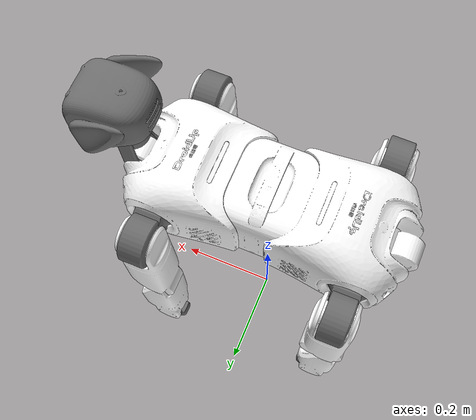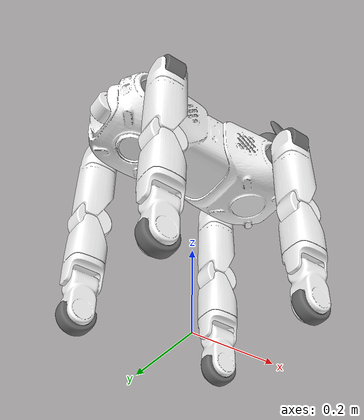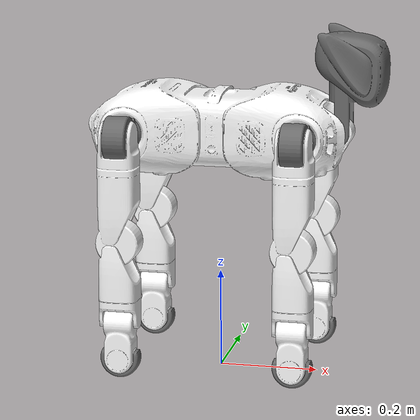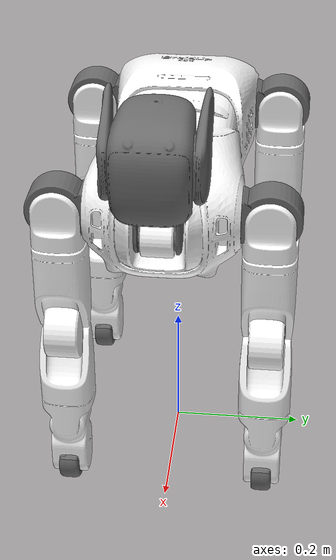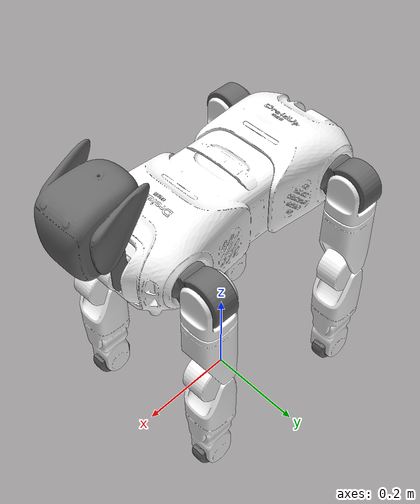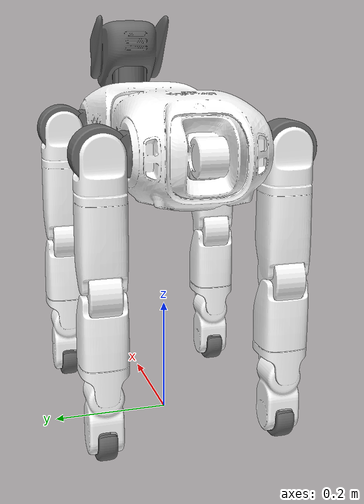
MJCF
<mujoco model="E1dog">
  <compiler angle="radian" meshdir="./meshes/"/>
  <statistic meansize="0.144785" extent="1.23314" center="0.025392 2.0634e-05 -0.245975"/>
  <default>
    <joint damping="0.1" armature="0.01" frictionloss="0.3"/>
  </default>
  <asset>
    <mesh name="base" file="base.STL"/>
    <mesh name="head_pitch_link" file="head_pitch_link.STL"/>
    <mesh name="head_yaw_link" file="head_yaw_link.STL"/>
    <mesh name="FL_thigh_link" file="FL_thigh_link.STL"/>
    <mesh name="FL_hip_link" file="FL_hip_link.STL"/>
    <mesh name="FL_calf_link" file="FL_calf_link.STL"/>
    <mesh name="FL_foot_link" file="FL_foot_link.STL"/>
    <mesh name="FR_thigh_link" file="FR_thigh_link.STL"/>
    <mesh name="FR_hip_link" file="FR_hip_link.STL"/>
    <mesh name="FR_calf_link" file="FR_calf_link.STL"/>
    <mesh name="FR_foot_link" file="FR_foot_link.STL"/>
    <mesh name="RL_thigh_link" file="RL_thigh_link.STL"/>
    <mesh name="RL_hip_link" file="RL_hip_link.STL"/>
    <mesh name="RL_calf_link" file="RL_calf_link.STL"/>
    <mesh name="RL_foot_link" file="RL_foot_link.STL"/>
    <mesh name="RR_thigh_link" file="RR_thigh_link.STL"/>
    <mesh name="RR_hip_link" file="RR_hip_link.STL"/>
    <mesh name="RR_calf_link" file="RR_calf_link.STL"/>
    <mesh name="RR_foot_link" file="RR_foot_link.STL"/>
    <mesh name="logo" file="logo.STL"/>
  </asset>

  <worldbody>
    <body name="base" pos="0 0 0.50">
      <inertial pos="0.0891669 -0.000129444 0.0258764" quat="0.0063885 0.583566 0.00373905 0.812032" mass="5.201" diaginertia="0.157138 0.135516 0.0747616"/>
      <joint name="floating_base_joint" type="free" limited="false" actuatorfrclimited="false"/>
      <geom type="mesh" contype="0" conaffinity="0" group="1" density="0" rgba="1 1 1 1" mesh="base"/>
      <geom type="mesh" rgba="1 1 1 1" mesh="base"/>
      <geom pos="0.24 0 0" type="mesh" contype="0" conaffinity="0" group="1" density="0" rgba="0.41961 0.41961 0.41961 1" mesh="head_pitch_link"/>
      <geom pos="0.25 0 0.12" quat="1 0 0 0" type="mesh" contype="0" conaffinity="0" group="1" density="0" rgba="0.41961 0.41961 0.41961 1" mesh="head_yaw_link"/>
      <geom type="mesh" contype="0" conaffinity="0" group="1" density="0" rgba="1 1 1 1" mesh="logo"/>
      <site name="imu" pos="-0.10 0  0.07"/>
      <body name="FL_thigh_link" pos="0.1755 0.094 0">
        <inertial pos="0 0.0468537 0" quat="0.707107 0.707107 0 0" mass="0.8" diaginertia="0.0009615 0.00072642 0.00052077"/>
        <joint name="FL_thigh_joint" pos="0 0 0" axis="0 1 0" range="-1.5708 3.4907" actuatorfrcrange="-23.7 23.7"/>
        <geom type="mesh" contype="0" conaffinity="0" group="1" density="0" rgba="0.41961 0.41961 0.41961 1" mesh="FL_thigh_link"/>
        <body name="FL_hip_link" pos="0 0.055 0">
          <inertial pos="-0.00166297 0 -0.0878622" quat="0.706782 -0.0214321 -0.0214321 0.706782" mass="1.5" diaginertia="0.00451595 0.00447737 0.00140494"/>
          <joint name="FL_hip_joint" pos="0 0 0" axis="1 0 0" range="-1.0472 1.0472" actuatorfrcrange="-23.7 23.7"/>
          <geom type="mesh" contype="0" conaffinity="0" group="1" density="0" rgba="1 1 1 1" mesh="FL_hip_link"/>
          <body name="FL_calf_link" pos="0 0 -0.21">
            <inertial pos="-0.00153638 0 -0.143292" quat="0.707072 0.00701037 0.00701037 0.707072" mass="1.4" diaginertia="0.00758791 0.0074624 0.00112784"/>
            <joint name="FL_calf_joint" pos="0 0 0" axis="0 1 0" range="-2.7227 -0.83776" actuatorfrcrange="-45.43 45.43"/>
            <geom type="mesh" contype="0" conaffinity="0" group="1" density="0" rgba="1 1 1 1" mesh="FL_calf_link"/>
            <geom pos="0 0 -0.23844" quat="1 0 0 0" type="mesh" contype="0" conaffinity="0" group="1" density="0" rgba="0.41961 0.41961 0.41961 1" mesh="FL_foot_link"/>
            <geom pos="0 0 -0.23844" quat="1 0 0 0" type="mesh" rgba="0.41961 0.41961 0.41961 1" mesh="FL_foot_link"/>
          </body>
        </body>
      </body>
      <body name="FR_thigh_link" pos="0.1755 -0.094 0">
        <inertial pos="0 -0.0468537 0" quat="0.707107 0.707107 0 0" mass="0.8" diaginertia="0.0009615 0.00072642 0.00052077"/>
        <joint name="FR_thigh_joint" pos="0 0 0" axis="0 1 0" range="-1.5708 3.4907" actuatorfrcrange="-23.7 23.7"/>
        <geom type="mesh" contype="0" conaffinity="0" group="1" density="0" rgba="0.41961 0.41961 0.41961 1" mesh="FR_thigh_link"/>
        <body name="FR_hip_link" pos="0 -0.055 0">
          <inertial pos="-0.00166297 0 -0.0878622" quat="0.706782 -0.0214321 -0.0214321 0.706782" mass="1.5" diaginertia="0.00451595 0.00447737 0.00140494"/>
          <joint name="FR_hip_joint" pos="0 0 0" axis="1 0 0" range="-1.0472 1.0472" actuatorfrcrange="-23.7 23.7"/>
          <geom type="mesh" contype="0" conaffinity="0" group="1" density="0" rgba="1 1 1 1" mesh="FR_hip_link"/>
          <body name="FR_calf_link" pos="0 0 -0.21">
            <inertial pos="-0.00153638 0 -0.143292" quat="0.707072 0.00701037 0.00701037 0.707072" mass="1.4" diaginertia="0.00758791 0.0074624 0.00112784"/>
            <joint name="FR_calf_joint" pos="0 0 0" axis="0 1 0" range="-2.7227 -0.83776" actuatorfrcrange="-45.43 45.43"/>
            <geom type="mesh" contype="0" conaffinity="0" group="1" density="0" rgba="1 1 1 1" mesh="FR_calf_link"/>
            <geom pos="0 0 -0.23844" quat="1 0 0 0" type="mesh" contype="0" conaffinity="0" group="1" density="0" rgba="0.41961 0.41961 0.41961 1" mesh="FR_foot_link"/>
            <geom pos="0 0 -0.23844" quat="1 0 0 0" type="mesh" rgba="0.41961 0.41961 0.41961 1" mesh="FR_foot_link"/>
          </body>
        </body>
      </body>
      <body name="RL_thigh_link" pos="-0.175 0.094 0">
        <inertial pos="0 0.0458537 0" quat="0.707107 0.707107 0 0" mass="0.8" diaginertia="0.0009615 0.00072642 0.00052077"/>
        <joint name="RL_thigh_joint" pos="0 0 0" axis="0 1 0" range="-1.5708 3.4907" actuatorfrcrange="-23.7 23.7"/>
        <geom type="mesh" contype="0" conaffinity="0" group="1" density="0" rgba="0.41961 0.41961 0.41961 1" mesh="RL_thigh_link"/>
        <body name="RL_hip_link" pos="0 0.054 0">
          <inertial pos="-0.00116297 0 -0.0878622" quat="0.706782 -0.0214321 -0.0214321 0.706782" mass="1.5" diaginertia="0.00451595 0.00447737 0.00140494"/>
          <joint name="RL_hip_joint" pos="0 0 0" axis="1 0 0" range="-1.0472 1.0472" actuatorfrcrange="-23.7 23.7"/>
          <geom type="mesh" contype="0" conaffinity="0" group="1" density="0" rgba="1 1 1 1" mesh="RL_hip_link"/>
          <body name="RL_calf_link" pos="0.0005 0 -0.21">
            <inertial pos="-0.00153638 0 -0.143292" quat="0.707072 0.00701034 0.00701034 0.707072" mass="1.4" diaginertia="0.00758793 0.00746242 0.00112784"/>
            <joint name="RL_calf_joint" pos="0 0 0" axis="0 1 0" range="-2.7227 -0.83776" actuatorfrcrange="-45.43 45.43"/>
            <geom type="mesh" contype="0" conaffinity="0" group="1" density="0" rgba="1 1 1 1" mesh="RL_calf_link"/>
            <geom pos="0 0 -0.23844" quat="1 0 0 0" type="mesh" contype="0" conaffinity="0" group="1" density="0" rgba="0.41961 0.41961 0.41961 1" mesh="RL_foot_link"/>
            <geom pos="0 0 -0.23844" quat="1 0 0 0" type="mesh" rgba="0.41961 0.41961 0.41961 1" mesh="RL_foot_link"/>
          </body>
        </body>
      </body>
      <body name="RR_thigh_link" pos="-0.1745 -0.094 0">
        <inertial pos="0 -0.0468537 0" quat="0.707107 0.707107 0 0" mass="0.8" diaginertia="0.0009615 0.00072642 0.00052077"/>
        <joint name="RR_thigh_joint" pos="0 0 0" axis="0 1 0" range="-1.5708 3.4907" actuatorfrcrange="-23.7 23.7"/>
        <geom type="mesh" contype="0" conaffinity="0" group="1" density="0" rgba="0.41961 0.41961 0.41961 1" mesh="RR_thigh_link"/>
        <body name="RR_hip_link" pos="0 -0.055 0">
          <inertial pos="-0.00166297 0 -0.0878622" quat="0.706782 -0.0214321 -0.0214321 0.706782" mass="1.5" diaginertia="0.00451595 0.00447737 0.00140494"/>
          <joint name="RR_hip_joint" pos="0 0 0" axis="1 0 0" range="-1.0472 1.0472" actuatorfrcrange="-23.7 23.7"/>
          <geom type="mesh" contype="0" conaffinity="0" group="1" density="0" rgba="1 1 1 1" mesh="RR_hip_link"/>
          <body name="RR_calf_link" pos="0 0 -0.21">
            <inertial pos="-0.00153638 0 -0.143292" quat="0.707072 0.00701037 0.00701037 0.707072" mass="1.4" diaginertia="0.00758791 0.0074624 0.00112784"/>
            <joint name="RR_calf_joint" pos="0 0 0" axis="0 1 0" range="-2.7227 -0.83776" actuatorfrcrange="-45.43 45.43"/>
            <geom type="mesh" contype="0" conaffinity="0" group="1" density="0" rgba="1 1 1 1" mesh="RR_calf_link"/>
            <geom pos="0 0 -0.23844" quat="1 0 0 0" type="mesh" contype="0" conaffinity="0" group="1" density="0" rgba="0.41961 0.41961 0.41961 1" mesh="RR_foot_link"/>
            <geom pos="0 0 -0.23844" quat="1 0 0 0" type="mesh" rgba="0.41961 0.41961 0.41961 1" mesh="RR_foot_link"/>
          </body>
        </body>
      </body>
    </body>
  </worldbody>
  <actuator>
    <motor name="FL_thigh_joint"   joint="FL_thigh_joint"   /> <!-- Leg Left -->
    <motor name="FL_hip_joint"     joint="FL_hip_joint"    />
    <motor name="FL_calf_joint"    joint="FL_calf_joint"     />
    <motor name="FR_thigh_joint"   joint="FR_thigh_joint"  />
    <motor name="FR_hip_joint"     joint="FR_hip_joint" />
    <motor name="FR_calf_joint"    joint="FR_calf_joint"  />

    <motor name="RL_thigh_joint"   joint="RL_thigh_joint"   /> <!-- Right Left -->
    <motor name="RL_hip_joint"     joint="RL_hip_joint"    />
    <motor name="RL_calf_joint"    joint="RL_calf_joint"     />
    <motor name="RR_thigh_joint"   joint="RR_thigh_joint"  />
    <motor name="RR_hip_joint"     joint="RR_hip_joint" />
    <motor name="RR_calf_joint"    joint="RR_calf_joint"  />
  </actuator>
  <sensor>
    <!-- 身体的的姿态 -->
    <gyro          name="gyro"    site='imu' noise='0.005' cutoff='34.9'/>
    <accelerometer name="acc"     site='imu' noise='0.005' cutoff='157'/>
    <framequat     name='bq'      objtype='site' noise='0.001' objname='imu'/>
    <framelinvel   name="blv"  objtype='site' objname='imu'/>
  </sensor>
</mujoco>
